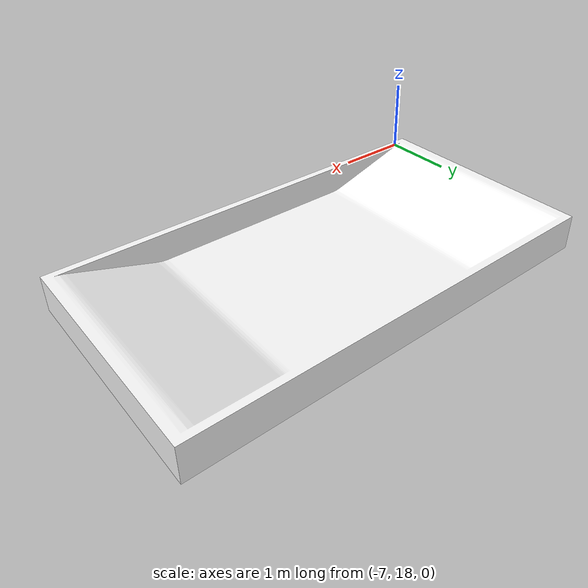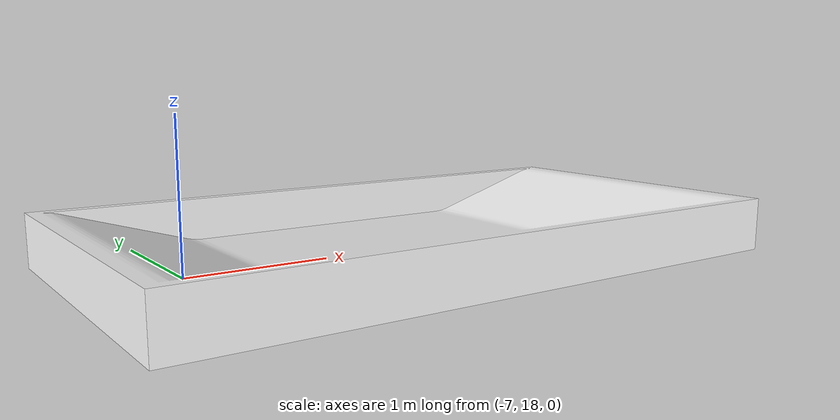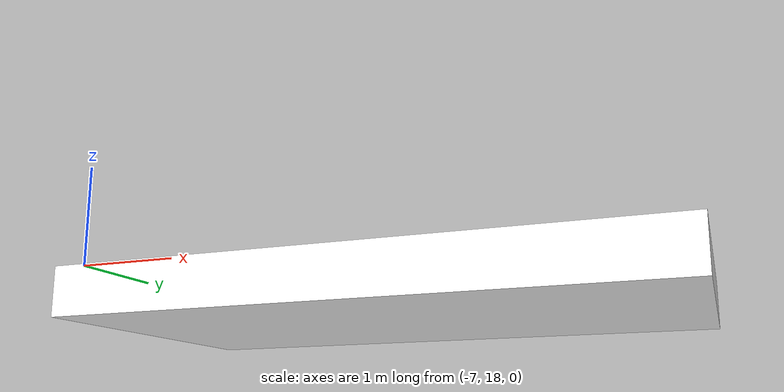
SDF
<?xml version="1.0" ?>
<sdf version="1.6">
  <model name="sudangecis">
    <static>true</static>
    <link name="sudangecis_link">
      <visual name="sudangecis_visual">
        <geometry>
          <mesh>
            <uri>model://sudangecis/meshes/sudangecis.dae</uri>
          </mesh>
        </geometry>
      </visual>
      <collision name="sudangecis_collision">
        <geometry>
          <mesh>
            <uri>model://sudangecis/meshes/sudangecis.dae</uri>
          </mesh>
        </geometry>
      </collision>
    </link>
  </model>
</sdf>
